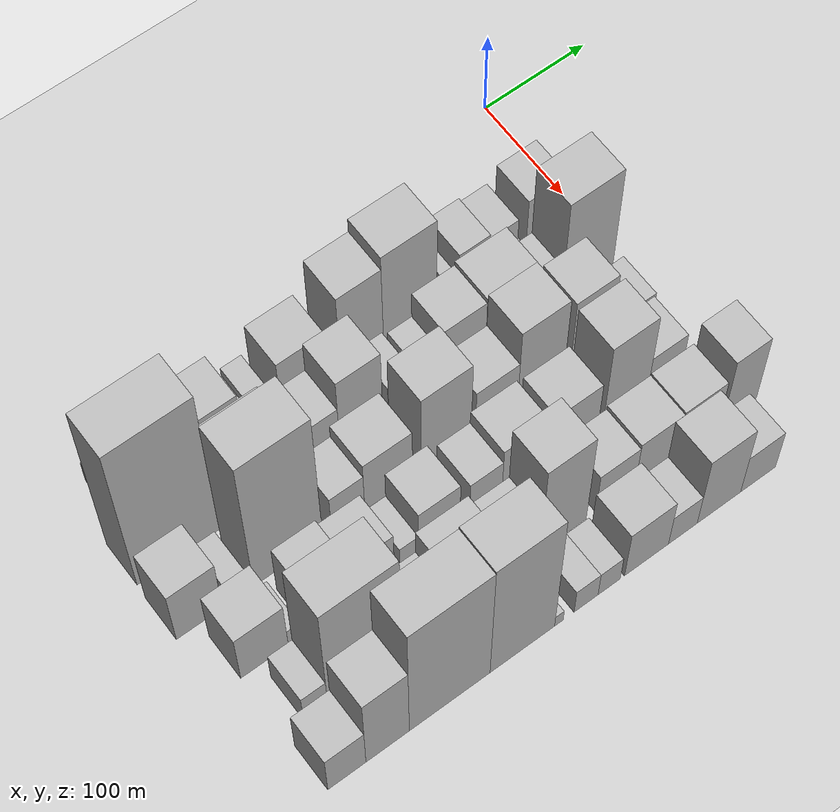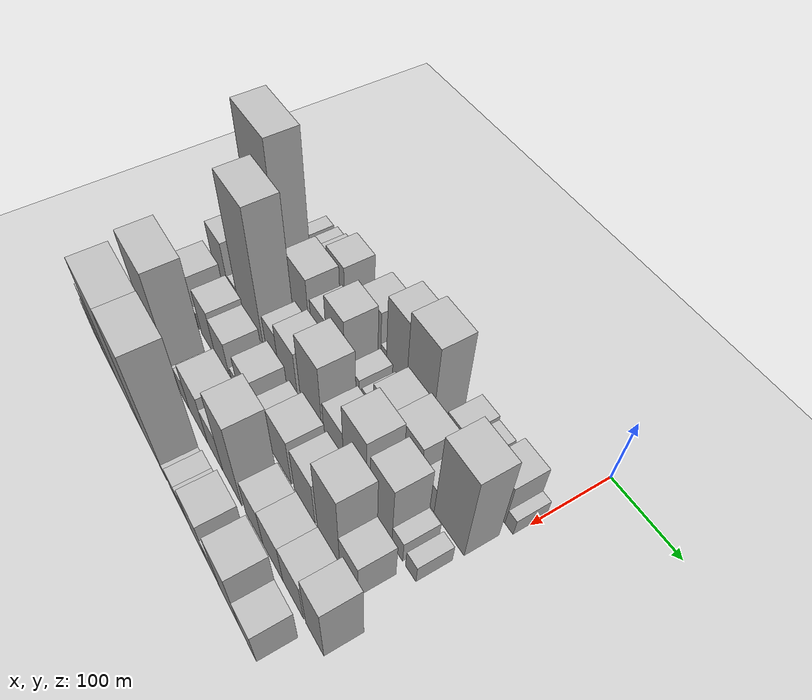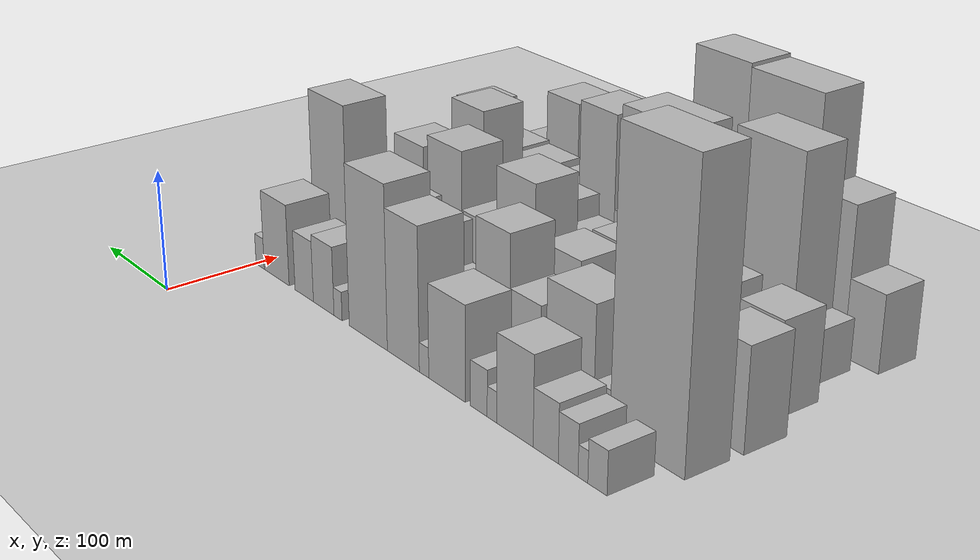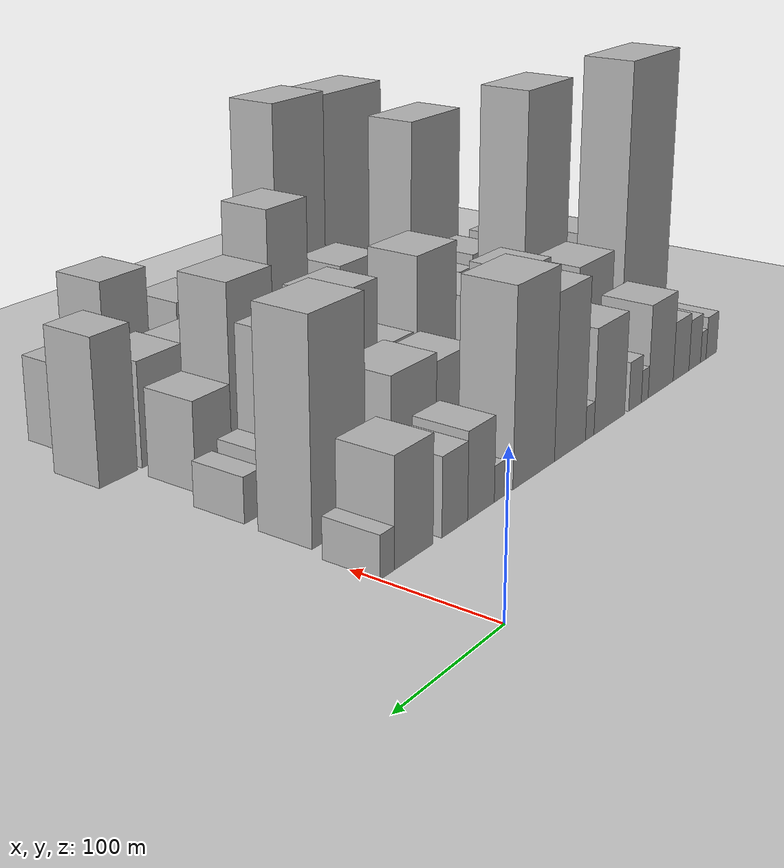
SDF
<sdf version="1.6">
 <world name="default">
  <include><name>ground_plane_1</name><uri>model://HANNAS_ground_plane</uri></include>
  <model name="building_14">
   <static>1</static>
   <pose>100.0000 -426.7860 0 0.000000 0.000000 0.000000</pose>
   <link name="link">
    <pose>0 0 16.50 0 0 0</pose>
    <collision name="collision"><geometry><box><size>40.0000 18.7343 33.0000</size></box></geometry></collision>
    <visual name="visual">
     <cast_shadows>0</cast_shadows>
     <geometry><box><size>40.0000 18.7343 33.0000</size></box></geometry>
     <material>
      <script>
       <uri>model://HANNAS_wall/materials/scripts</uri>
       <uri>model://HANNAS_wall/materials/textures</uri>
       <name>vrc/HANNAS_wall</name>
      </script>
     </material>
    </visual>
   </link>
  </model>
  <model name="building_15">
   <static>1</static>
   <pose>100.0000 -412.5389 0 0.000000 0.000000 0.000000</pose>
   <link name="link">
    <pose>0 0 12.00 0 0 0</pose>
    <collision name="collision"><geometry><box><size>40.0000 9.7600 24.0000</size></box></geometry></collision>
    <visual name="visual">
     <cast_shadows>0</cast_shadows>
     <geometry><box><size>40.0000 9.7600 24.0000</size></box></geometry>
     <material>
      <script>
       <uri>model://HANNAS_wall/materials/scripts</uri>
       <uri>model://HANNAS_wall/materials/textures</uri>
       <name>vrc/HANNAS_wall</name>
      </script>
     </material>
    </visual>
   </link>
  </model>
  <model name="building_16">
   <static>1</static>
   <pose>100.0000 -397.6763 0 0.000000 0.000000 0.000000</pose>
   <link name="link">
    <pose>0 0 19.50 0 0 0</pose>
    <collision name="collision"><geometry><box><size>40.0000 19.9652 39.0000</size></box></geometry></collision>
    <visual name="visual">
     <cast_shadows>0</cast_shadows>
     <geometry><box><size>40.0000 19.9652 39.0000</size></box></geometry>
     <material>
      <script>
       <uri>model://HANNAS_wall/materials/scripts</uri>
       <uri>model://HANNAS_wall/materials/textures</uri>
       <name>vrc/HANNAS_wall</name>
      </script>
     </material>
    </visual>
   </link>
  </model>
  <model name="building_17">
   <static>1</static>
   <pose>100.0000 -374.5633 0 0.000000 0.000000 0.000000</pose>
   <link name="link">
    <pose>0 0 22.50 0 0 0</pose>
    <collision name="collision"><geometry><box><size>40.0000 26.2607 45.0000</size></box></geometry></collision>
    <visual name="visual">
     <cast_shadows>0</cast_shadows>
     <geometry><box><size>40.0000 26.2607 45.0000</size></box></geometry>
     <material>
      <script>
       <uri>model://HANNAS_wall/materials/scripts</uri>
       <uri>model://HANNAS_wall/materials/textures</uri>
       <name>vrc/HANNAS_wall</name>
      </script>
     </material>
    </visual>
   </link>
  </model>
  <model name="building_18">
   <static>1</static>
   <pose>100.0000 -341.5382 0 0.000000 0.000000 0.000000</pose>
   <link name="link">
    <pose>0 0 34.50 0 0 0</pose>
    <collision name="collision"><geometry><box><size>40.0000 39.7896 69.0000</size></box></geometry></collision>
    <visual name="visual">
     <cast_shadows>0</cast_shadows>
     <geometry><box><size>40.0000 39.7896 69.0000</size></box></geometry>
     <material>
      <script>
       <uri>model://HANNAS_wall/materials/scripts</uri>
       <uri>model://HANNAS_wall/materials/textures</uri>
       <name>vrc/HANNAS_wall</name>
      </script>
     </material>
    </visual>
   </link>
  </model>
  <model name="building_19">
   <static>1</static>
   <pose>100.0000 -316.3711 0 0.000000 0.000000 0.000000</pose>
   <link name="link">
    <pose>0 0 12.00 0 0 0</pose>
    <collision name="collision"><geometry><box><size>40.0000 10.5445 24.0000</size></box></geometry></collision>
    <visual name="visual">
     <cast_shadows>0</cast_shadows>
     <geometry><box><size>40.0000 10.5445 24.0000</size></box></geometry>
     <material>
      <script>
       <uri>model://HANNAS_wall/materials/scripts</uri>
       <uri>model://HANNAS_wall/materials/textures</uri>
       <name>vrc/HANNAS_wall</name>
      </script>
     </material>
    </visual>
   </link>
  </model>
  <model name="building_20">
   <static>1</static>
   <pose>100.0000 -301.5799 0 0.000000 0.000000 0.000000</pose>
   <link name="link">
    <pose>0 0 18.00 0 0 0</pose>
    <collision name="collision"><geometry><box><size>40.0000 19.0379 36.0000</size></box></geometry></collision>
    <visual name="visual">
     <cast_shadows>0</cast_shadows>
     <geometry><box><size>40.0000 19.0379 36.0000</size></box></geometry>
     <material>
      <script>
       <uri>model://HANNAS_wall/materials/scripts</uri>
       <uri>model://HANNAS_wall/materials/textures</uri>
       <name>vrc/HANNAS_wall</name>
      </script>
     </material>
    </visual>
   </link>
  </model>
  <model name="building_21">
   <static>1</static>
   <pose>100.0000 -264.2307 0 0.000000 0.000000 0.000000</pose>
   <link name="link">
    <pose>0 0 37.50 0 0 0</pose>
    <collision name="collision"><geometry><box><size>40.0000 43.6604 75.0000</size></box></geometry></collision>
    <visual name="visual">
     <cast_shadows>0</cast_shadows>
     <geometry><box><size>40.0000 43.6604 75.0000</size></box></geometry>
     <material>
      <script>
       <uri>model://HANNAS_wall/materials/scripts</uri>
       <uri>model://HANNAS_wall/materials/textures</uri>
       <name>vrc/HANNAS_wall</name>
      </script>
     </material>
    </visual>
   </link>
  </model>
  <model name="building_22">
   <static>1</static>
   <pose>100.0000 -236.5684 0 0.000000 0.000000 0.000000</pose>
   <link name="link">
    <pose>0 0 12.00 0 0 0</pose>
    <collision name="collision"><geometry><box><size>40.0000 11.6643 24.0000</size></box></geometry></collision>
    <visual name="visual">
     <cast_shadows>0</cast_shadows>
     <geometry><box><size>40.0000 11.6643 24.0000</size></box></geometry>
     <material>
      <script>
       <uri>model://HANNAS_wall/materials/scripts</uri>
       <uri>model://HANNAS_wall/materials/textures</uri>
       <name>vrc/HANNAS_wall</name>
      </script>
     </material>
    </visual>
   </link>
  </model>
  <model name="building_23">
   <static>1</static>
   <pose>100.0000 -210.4001 0 0.000000 0.000000 0.000000</pose>
   <link name="link">
    <pose>0 0 57.00 0 0 0</pose>
    <collision name="collision"><geometry><box><size>40.0000 40.6722 114.0000</size></box></geometry></collision>
    <visual name="visual">
     <cast_shadows>0</cast_shadows>
     <geometry><box><size>40.0000 40.6722 114.0000</size></box></geometry>
     <material>
      <script>
       <uri>model://HANNAS_wall/materials/scripts</uri>
       <uri>model://HANNAS_wall/materials/textures</uri>
       <name>vrc/HANNAS_wall</name>
      </script>
     </material>
    </visual>
   </link>
  </model>
  <model name="building_24">
   <static>1</static>
   <pose>100.0000 -164.5461 0 0.000000 0.000000 0.000000</pose>
   <link name="link">
    <pose>0 0 66.00 0 0 0</pose>
    <collision name="collision"><geometry><box><size>40.0000 51.0359 132.0000</size></box></geometry></collision>
    <visual name="visual">
     <cast_shadows>0</cast_shadows>
     <geometry><box><size>40.0000 51.0359 132.0000</size></box></geometry>
     <material>
      <script>
       <uri>model://HANNAS_wall/materials/scripts</uri>
       <uri>model://HANNAS_wall/materials/textures</uri>
       <name>vrc/HANNAS_wall</name>
      </script>
     </material>
    </visual>
   </link>
  </model>
  <model name="building_25">
   <static>1</static>
   <pose>100.0000 -123.3570 0 0.000000 0.000000 0.000000</pose>
   <link name="link">
    <pose>0 0 12.00 0 0 0</pose>
    <collision name="collision"><geometry><box><size>40.0000 11.3422 24.0000</size></box></geometry></collision>
    <visual name="visual">
     <cast_shadows>0</cast_shadows>
     <geometry><box><size>40.0000 11.3422 24.0000</size></box></geometry>
     <material>
      <script>
       <uri>model://HANNAS_wall/materials/scripts</uri>
       <uri>model://HANNAS_wall/materials/textures</uri>
       <name>vrc/HANNAS_wall</name>
      </script>
     </material>
    </visual>
   </link>
  </model>
  <model name="building_26">
   <static>1</static>
   <pose>100.0000 -102.9204 0 0.000000 0.000000 0.000000</pose>
   <link name="link">
    <pose>0 0 28.50 0 0 0</pose>
    <collision name="collision"><geometry><box><size>40.0000 29.5310 57.0000</size></box></geometry></collision>
    <visual name="visual">
     <cast_shadows>0</cast_shadows>
     <geometry><box><size>40.0000 29.5310 57.0000</size></box></geometry>
     <material>
      <script>
       <uri>model://HANNAS_wall/materials/scripts</uri>
       <uri>model://HANNAS_wall/materials/textures</uri>
       <name>vrc/HANNAS_wall</name>
      </script>
     </material>
    </visual>
   </link>
  </model>
  <model name="building_27">
   <static>1</static>
   <pose>100.0000 -74.5961 0 0.000000 0.000000 0.000000</pose>
   <link name="link">
    <pose>0 0 25.50 0 0 0</pose>
    <collision name="collision"><geometry><box><size>40.0000 27.1176 51.0000</size></box></geometry></collision>
    <visual name="visual">
     <cast_shadows>0</cast_shadows>
     <geometry><box><size>40.0000 27.1176 51.0000</size></box></geometry>
     <material>
      <script>
       <uri>model://HANNAS_wall/materials/scripts</uri>
       <uri>model://HANNAS_wall/materials/textures</uri>
       <name>vrc/HANNAS_wall</name>
      </script>
     </material>
    </visual>
   </link>
  </model>
  <model name="building_28">
   <static>1</static>
   <pose>100.0000 -32.9300 0 0.000000 0.000000 0.000000</pose>
   <link name="link">
    <pose>0 0 34.50 0 0 0</pose>
    <collision name="collision"><geometry><box><size>40.0000 38.2145 69.0000</size></box></geometry></collision>
    <visual name="visual">
     <cast_shadows>0</cast_shadows>
     <geometry><box><size>40.0000 38.2145 69.0000</size></box></geometry>
     <material>
      <script>
       <uri>model://HANNAS_wall/materials/scripts</uri>
       <uri>model://HANNAS_wall/materials/textures</uri>
       <name>vrc/HANNAS_wall</name>
      </script>
     </material>
    </visual>
   </link>
  </model>
  <model name="building_29">
   <static>1</static>
   <pose>100.0000 -7.2792 0 0.000000 0.000000 0.000000</pose>
   <link name="link">
    <pose>0 0 13.50 0 0 0</pose>
    <collision name="collision"><geometry><box><size>40.0000 13.0871 27.0000</size></box></geometry></collision>
    <visual name="visual">
     <cast_shadows>0</cast_shadows>
     <geometry><box><size>40.0000 13.0871 27.0000</size></box></geometry>
     <material>
      <script>
       <uri>model://HANNAS_wall/materials/scripts</uri>
       <uri>model://HANNAS_wall/materials/textures</uri>
       <name>vrc/HANNAS_wall</name>
      </script>
     </material>
    </visual>
   </link>
  </model>
  <model name="building_66">
   <static>1</static>
   <pose>152.0000 -415.1909 0 0.000000 0.000000 0.000000</pose>
   <link name="link">
    <pose>0 0 112.50 0 0 0</pose>
    <collision name="collision"><geometry><box><size>40.0000 73.3578 225.0000</size></box></geometry></collision>
    <visual name="visual">
     <cast_shadows>0</cast_shadows>
     <geometry><box><size>40.0000 73.3578 225.0000</size></box></geometry>
     <material>
      <script>
       <uri>model://HANNAS_wall/materials/scripts</uri>
       <uri>model://HANNAS_wall/materials/textures</uri>
       <name>vrc/HANNAS_wall</name>
      </script>
     </material>
    </visual>
   </link>
  </model>
  <model name="building_67">
   <static>1</static>
   <pose>152.0000 -370.0278 0 0.000000 0.000000 0.000000</pose>
   <link name="link">
    <pose>0 0 16.50 0 0 0</pose>
    <collision name="collision"><geometry><box><size>40.0000 16.9684 33.0000</size></box></geometry></collision>
    <visual name="visual">
     <cast_shadows>0</cast_shadows>
     <geometry><box><size>40.0000 16.9684 33.0000</size></box></geometry>
     <material>
      <script>
       <uri>model://HANNAS_wall/materials/scripts</uri>
       <uri>model://HANNAS_wall/materials/textures</uri>
       <name>vrc/HANNAS_wall</name>
      </script>
     </material>
    </visual>
   </link>
  </model>
  <model name="building_68">
   <static>1</static>
   <pose>152.0000 -335.8367 0 0.000000 0.000000 0.000000</pose>
   <link name="link">
    <pose>0 0 45.00 0 0 0</pose>
    <collision name="collision"><geometry><box><size>40.0000 51.4138 90.0000</size></box></geometry></collision>
    <visual name="visual">
     <cast_shadows>0</cast_shadows>
     <geometry><box><size>40.0000 51.4138 90.0000</size></box></geometry>
     <material>
      <script>
       <uri>model://HANNAS_wall/materials/scripts</uri>
       <uri>model://HANNAS_wall/materials/textures</uri>
       <name>vrc/HANNAS_wall</name>
      </script>
     </material>
    </visual>
   </link>
  </model>
  <model name="building_69">
   <static>1</static>
   <pose>152.0000 -286.5372 0 0.000000 0.000000 0.000000</pose>
   <link name="link">
    <pose>0 0 33.00 0 0 0</pose>
    <collision name="collision"><geometry><box><size>40.0000 35.1853 66.0000</size></box></geometry></collision>
    <visual name="visual">
     <cast_shadows>0</cast_shadows>
     <geometry><box><size>40.0000 35.1853 66.0000</size></box></geometry>
     <material>
      <script>
       <uri>model://HANNAS_wall/materials/scripts</uri>
       <uri>model://HANNAS_wall/materials/textures</uri>
       <name>vrc/HANNAS_wall</name>
      </script>
     </material>
    </visual>
   </link>
  </model>
  <model name="building_70">
   <static>1</static>
   <pose>152.0000 -248.9999 0 0.000000 0.000000 0.000000</pose>
   <link name="link">
    <pose>0 0 54.00 0 0 0</pose>
    <collision name="collision"><geometry><box><size>40.0000 39.8893 108.0000</size></box></geometry></collision>
    <visual name="visual">
     <cast_shadows>0</cast_shadows>
     <geometry><box><size>40.0000 39.8893 108.0000</size></box></geometry>
     <material>
      <script>
       <uri>model://HANNAS_wall/materials/scripts</uri>
       <uri>model://HANNAS_wall/materials/textures</uri>
       <name>vrc/HANNAS_wall</name>
      </script>
     </material>
    </visual>
   </link>
  </model>
  <model name="building_71">
   <static>1</static>
   <pose>152.0000 -211.8616 0 0.000000 0.000000 0.000000</pose>
   <link name="link">
    <pose>0 0 22.50 0 0 0</pose>
    <collision name="collision"><geometry><box><size>40.0000 24.3873 45.0000</size></box></geometry></collision>
    <visual name="visual">
     <cast_shadows>0</cast_shadows>
     <geometry><box><size>40.0000 24.3873 45.0000</size></box></geometry>
     <material>
      <script>
       <uri>model://HANNAS_wall/materials/scripts</uri>
       <uri>model://HANNAS_wall/materials/textures</uri>
       <name>vrc/HANNAS_wall</name>
      </script>
     </material>
    </visual>
   </link>
  </model>
  <model name="building_72">
   <static>1</static>
   <pose>152.0000 -183.2617 0 0.000000 0.000000 0.000000</pose>
   <link name="link">
    <pose>0 0 19.50 0 0 0</pose>
    <collision name="collision"><geometry><box><size>40.0000 22.8126 39.0000</size></box></geometry></collision>
    <visual name="visual">
     <cast_shadows>0</cast_shadows>
     <geometry><box><size>40.0000 22.8126 39.0000</size></box></geometry>
     <material>
      <script>
       <uri>model://HANNAS_wall/materials/scripts</uri>
       <uri>model://HANNAS_wall/materials/textures</uri>
       <name>vrc/HANNAS_wall</name>
      </script>
     </material>
    </visual>
   </link>
  </model>
  <model name="building_73">
   <static>1</static>
   <pose>152.0000 -151.7934 0 0.000000 0.000000 0.000000</pose>
   <link name="link">
    <pose>0 0 37.50 0 0 0</pose>
    <collision name="collision"><geometry><box><size>40.0000 40.1239 75.0000</size></box></geometry></collision>
    <visual name="visual">
     <cast_shadows>0</cast_shadows>
     <geometry><box><size>40.0000 40.1239 75.0000</size></box></geometry>
     <material>
      <script>
       <uri>model://HANNAS_wall/materials/scripts</uri>
       <uri>model://HANNAS_wall/materials/textures</uri>
       <name>vrc/HANNAS_wall</name>
      </script>
     </material>
    </visual>
   </link>
  </model>
  <model name="building_74">
   <static>1</static>
   <pose>152.0000 -107.4669 0 0.000000 0.000000 0.000000</pose>
   <link name="link">
    <pose>0 0 40.50 0 0 0</pose>
    <collision name="collision"><geometry><box><size>40.0000 48.5291 81.0000</size></box></geometry></collision>
    <visual name="visual">
     <cast_shadows>0</cast_shadows>
     <geometry><box><size>40.0000 48.5291 81.0000</size></box></geometry>
     <material>
      <script>
       <uri>model://HANNAS_wall/materials/scripts</uri>
       <uri>model://HANNAS_wall/materials/textures</uri>
       <name>vrc/HANNAS_wall</name>
      </script>
     </material>
    </visual>
   </link>
  </model>
  <model name="building_75">
   <static>1</static>
   <pose>152.0000 -70.3819 0 0.000000 0.000000 0.000000</pose>
   <link name="link">
    <pose>0 0 22.50 0 0 0</pose>
    <collision name="collision"><geometry><box><size>40.0000 25.6409 45.0000</size></box></geometry></collision>
    <visual name="visual">
     <cast_shadows>0</cast_shadows>
     <geometry><box><size>40.0000 25.6409 45.0000</size></box></geometry>
     <material>
      <script>
       <uri>model://HANNAS_wall/materials/scripts</uri>
       <uri>model://HANNAS_wall/materials/textures</uri>
       <name>vrc/HANNAS_wall</name>
      </script>
     </material>
    </visual>
   </link>
  </model>
  <model name="building_76">
   <static>1</static>
   <pose>152.0000 -32.1716 0 0.000000 0.000000 0.000000</pose>
   <link name="link">
    <pose>0 0 70.50 0 0 0</pose>
    <collision name="collision"><geometry><box><size>40.0000 50.7798 141.0000</size></box></geometry></collision>
    <visual name="visual">
     <cast_shadows>0</cast_shadows>
     <geometry><box><size>40.0000 50.7798 141.0000</size></box></geometry>
     <material>
      <script>
       <uri>model://HANNAS_wall/materials/scripts</uri>
       <uri>model://HANNAS_wall/materials/textures</uri>
       <name>vrc/HANNAS_wall</name>
      </script>
     </material>
    </visual>
   </link>
  </model>
  <model name="building_114">
   <static>1</static>
   <pose>204.0000 -432.3704 0 0.000000 0.000000 0.000000</pose>
   <link name="link">
    <pose>0 0 40.50 0 0 0</pose>
    <collision name="collision"><geometry><box><size>40.0000 40.7654 81.0000</size></box></geometry></collision>
    <visual name="visual">
     <cast_shadows>0</cast_shadows>
     <geometry><box><size>40.0000 40.7654 81.0000</size></box></geometry>
     <material>
      <script>
       <uri>model://HANNAS_wall/materials/scripts</uri>
       <uri>model://HANNAS_wall/materials/textures</uri>
       <name>vrc/HANNAS_wall</name>
      </script>
     </material>
    </visual>
   </link>
  </model>
  <model name="building_115">
   <static>1</static>
   <pose>204.0000 -398.2589 0 0.000000 0.000000 0.000000</pose>
   <link name="link">
    <pose>0 0 16.50 0 0 0</pose>
    <collision name="collision"><geometry><box><size>40.0000 19.4574 33.0000</size></box></geometry></collision>
    <visual name="visual">
     <cast_shadows>0</cast_shadows>
     <geometry><box><size>40.0000 19.4574 33.0000</size></box></geometry>
     <material>
      <script>
       <uri>model://HANNAS_wall/materials/scripts</uri>
       <uri>model://HANNAS_wall/materials/textures</uri>
       <name>vrc/HANNAS_wall</name>
      </script>
     </material>
    </visual>
   </link>
  </model>
  <model name="building_116">
   <static>1</static>
   <pose>204.0000 -353.4340 0 0.000000 0.000000 0.000000</pose>
   <link name="link">
    <pose>0 0 103.50 0 0 0</pose>
    <collision name="collision"><geometry><box><size>40.0000 62.1924 207.0000</size></box></geometry></collision>
    <visual name="visual">
     <cast_shadows>0</cast_shadows>
     <geometry><box><size>40.0000 62.1924 207.0000</size></box></geometry>
     <material>
      <script>
       <uri>model://HANNAS_wall/materials/scripts</uri>
       <uri>model://HANNAS_wall/materials/textures</uri>
       <name>vrc/HANNAS_wall</name>
      </script>
     </material>
    </visual>
   </link>
  </model>
  <model name="building_117">
   <static>1</static>
   <pose>204.0000 -299.2143 0 0.000000 0.000000 0.000000</pose>
   <link name="link">
    <pose>0 0 30.00 0 0 0</pose>
    <collision name="collision"><geometry><box><size>40.0000 30.2470 60.0000</size></box></geometry></collision>
    <visual name="visual">
     <cast_shadows>0</cast_shadows>
     <geometry><box><size>40.0000 30.2470 60.0000</size></box></geometry>
     <material>
      <script>
       <uri>model://HANNAS_wall/materials/scripts</uri>
       <uri>model://HANNAS_wall/materials/textures</uri>
       <name>vrc/HANNAS_wall</name>
      </script>
     </material>
    </visual>
   </link>
  </model>
  <model name="building_118">
   <static>1</static>
   <pose>204.0000 -261.9814 0 0.000000 0.000000 0.000000</pose>
   <link name="link">
    <pose>0 0 39.00 0 0 0</pose>
    <collision name="collision"><geometry><box><size>40.0000 44.2189 78.0000</size></box></geometry></collision>
    <visual name="visual">
     <cast_shadows>0</cast_shadows>
     <geometry><box><size>40.0000 44.2189 78.0000</size></box></geometry>
     <material>
      <script>
       <uri>model://HANNAS_wall/materials/scripts</uri>
       <uri>model://HANNAS_wall/materials/textures</uri>
       <name>vrc/HANNAS_wall</name>
      </script>
     </material>
    </visual>
   </link>
  </model>
  <model name="building_119">
   <static>1</static>
   <pose>204.0000 -208.6191 0 0.000000 0.000000 0.000000</pose>
   <link name="link">
    <pose>0 0 60.00 0 0 0</pose>
    <collision name="collision"><geometry><box><size>40.0000 46.5056 120.0000</size></box></geometry></collision>
    <visual name="visual">
     <cast_shadows>0</cast_shadows>
     <geometry><box><size>40.0000 46.5056 120.0000</size></box></geometry>
     <material>
      <script>
       <uri>model://HANNAS_wall/materials/scripts</uri>
       <uri>model://HANNAS_wall/materials/textures</uri>
       <name>vrc/HANNAS_wall</name>
      </script>
     </material>
    </visual>
   </link>
  </model>
  <model name="building_120">
   <static>1</static>
   <pose>204.0000 -161.3106 0 0.000000 0.000000 0.000000</pose>
   <link name="link">
    <pose>0 0 34.50 0 0 0</pose>
    <collision name="collision"><geometry><box><size>40.0000 40.1116 69.0000</size></box></geometry></collision>
    <visual name="visual">
     <cast_shadows>0</cast_shadows>
     <geometry><box><size>40.0000 40.1116 69.0000</size></box></geometry>
     <material>
      <script>
       <uri>model://HANNAS_wall/materials/scripts</uri>
       <uri>model://HANNAS_wall/materials/textures</uri>
       <name>vrc/HANNAS_wall</name>
      </script>
     </material>
    </visual>
   </link>
  </model>
  <model name="building_121">
   <static>1</static>
   <pose>204.0000 -118.8850 0 0.000000 0.000000 0.000000</pose>
   <link name="link">
    <pose>0 0 58.50 0 0 0</pose>
    <collision name="collision"><geometry><box><size>40.0000 44.7396 117.0000</size></box></geometry></collision>
    <visual name="visual">
     <cast_shadows>0</cast_shadows>
     <geometry><box><size>40.0000 44.7396 117.0000</size></box></geometry>
     <material>
      <script>
       <uri>model://HANNAS_wall/materials/scripts</uri>
       <uri>model://HANNAS_wall/materials/textures</uri>
       <name>vrc/HANNAS_wall</name>
      </script>
     </material>
    </visual>
   </link>
  </model>
  <model name="building_122">
   <static>1</static>
   <pose>204.0000 -70.5329 0 0.000000 0.000000 0.000000</pose>
   <link name="link">
    <pose>0 0 52.50 0 0 0</pose>
    <collision name="collision"><geometry><box><size>40.0000 39.9645 105.0000</size></box></geometry></collision>
    <visual name="visual">
     <cast_shadows>0</cast_shadows>
     <geometry><box><size>40.0000 39.9645 105.0000</size></box></geometry>
     <material>
      <script>
       <uri>model://HANNAS_wall/materials/scripts</uri>
       <uri>model://HANNAS_wall/materials/textures</uri>
       <name>vrc/HANNAS_wall</name>
      </script>
     </material>
    </visual>
   </link>
  </model>
  <model name="building_123">
   <static>1</static>
   <pose>204.0000 -40.9830 0 0.000000 0.000000 0.000000</pose>
   <link name="link">
    <pose>0 0 18.00 0 0 0</pose>
    <collision name="collision"><geometry><box><size>40.0000 19.1354 36.0000</size></box></geometry></collision>
    <visual name="visual">
     <cast_shadows>0</cast_shadows>
     <geometry><box><size>40.0000 19.1354 36.0000</size></box></geometry>
     <material>
      <script>
       <uri>model://HANNAS_wall/materials/scripts</uri>
       <uri>model://HANNAS_wall/materials/textures</uri>
       <name>vrc/HANNAS_wall</name>
      </script>
     </material>
    </visual>
   </link>
  </model>
  <model name="building_124">
   <static>1</static>
   <pose>204.0000 -17.5441 0 0.000000 0.000000 0.000000</pose>
   <link name="link">
    <pose>0 0 15.00 0 0 0</pose>
    <collision name="collision"><geometry><box><size>40.0000 17.7423 30.0000</size></box></geometry></collision>
    <visual name="visual">
     <cast_shadows>0</cast_shadows>
     <geometry><box><size>40.0000 17.7423 30.0000</size></box></geometry>
     <material>
      <script>
       <uri>model://HANNAS_wall/materials/scripts</uri>
       <uri>model://HANNAS_wall/materials/textures</uri>
       <name>vrc/HANNAS_wall</name>
      </script>
     </material>
    </visual>
   </link>
  </model>
  <model name="building_160">
   <static>1</static>
   <pose>256.0000 -411.5734 0 0.000000 0.000000 0.000000</pose>
   <link name="link">
    <pose>0 0 37.50 0 0 0</pose>
    <collision name="collision"><geometry><box><size>40.0000 41.8106 75.0000</size></box></geometry></collision>
    <visual name="visual">
     <cast_shadows>0</cast_shadows>
     <geometry><box><size>40.0000 41.8106 75.0000</size></box></geometry>
     <material>
      <script>
       <uri>model://HANNAS_wall/materials/scripts</uri>
       <uri>model://HANNAS_wall/materials/textures</uri>
       <name>vrc/HANNAS_wall</name>
      </script>
     </material>
    </visual>
   </link>
  </model>
  <model name="building_161">
   <static>1</static>
   <pose>256.0000 -385.0964 0 0.000000 0.000000 0.000000</pose>
   <link name="link">
    <pose>0 0 13.50 0 0 0</pose>
    <collision name="collision"><geometry><box><size>40.0000 11.1434 27.0000</size></box></geometry></collision>
    <visual name="visual">
     <cast_shadows>0</cast_shadows>
     <geometry><box><size>40.0000 11.1434 27.0000</size></box></geometry>
     <material>
      <script>
       <uri>model://HANNAS_wall/materials/scripts</uri>
       <uri>model://HANNAS_wall/materials/textures</uri>
       <name>vrc/HANNAS_wall</name>
      </script>
     </material>
    </visual>
   </link>
  </model>
  <model name="building_162">
   <static>1</static>
   <pose>256.0000 -353.3601 0 0.000000 0.000000 0.000000</pose>
   <link name="link">
    <pose>0 0 37.50 0 0 0</pose>
    <collision name="collision"><geometry><box><size>40.0000 38.3291 75.0000</size></box></geometry></collision>
    <visual name="visual">
     <cast_shadows>0</cast_shadows>
     <geometry><box><size>40.0000 38.3291 75.0000</size></box></geometry>
     <material>
      <script>
       <uri>model://HANNAS_wall/materials/scripts</uri>
       <uri>model://HANNAS_wall/materials/textures</uri>
       <name>vrc/HANNAS_wall</name>
      </script>
     </material>
    </visual>
   </link>
  </model>
  <model name="building_163">
   <static>1</static>
   <pose>256.0000 -314.8310 0 0.000000 0.000000 0.000000</pose>
   <link name="link">
    <pose>0 0 33.00 0 0 0</pose>
    <collision name="collision"><geometry><box><size>40.0000 38.7291 66.0000</size></box></geometry></collision>
    <visual name="visual">
     <cast_shadows>0</cast_shadows>
     <geometry><box><size>40.0000 38.7291 66.0000</size></box></geometry>
     <material>
      <script>
       <uri>model://HANNAS_wall/materials/scripts</uri>
       <uri>model://HANNAS_wall/materials/textures</uri>
       <name>vrc/HANNAS_wall</name>
      </script>
     </material>
    </visual>
   </link>
  </model>
  <model name="building_164">
   <static>1</static>
   <pose>256.0000 -281.8417 0 0.000000 0.000000 0.000000</pose>
   <link name="link">
    <pose>0 0 16.50 0 0 0</pose>
    <collision name="collision"><geometry><box><size>40.0000 17.2495 33.0000</size></box></geometry></collision>
    <visual name="visual">
     <cast_shadows>0</cast_shadows>
     <geometry><box><size>40.0000 17.2495 33.0000</size></box></geometry>
     <material>
      <script>
       <uri>model://HANNAS_wall/materials/scripts</uri>
       <uri>model://HANNAS_wall/materials/textures</uri>
       <name>vrc/HANNAS_wall</name>
      </script>
     </material>
    </visual>
   </link>
  </model>
  <model name="building_165">
   <static>1</static>
   <pose>256.0000 -254.3484 0 0.000000 0.000000 0.000000</pose>
   <link name="link">
    <pose>0 0 36.00 0 0 0</pose>
    <collision name="collision"><geometry><box><size>40.0000 37.7371 72.0000</size></box></geometry></collision>
    <visual name="visual">
     <cast_shadows>0</cast_shadows>
     <geometry><box><size>40.0000 37.7371 72.0000</size></box></geometry>
     <material>
      <script>
       <uri>model://HANNAS_wall/materials/scripts</uri>
       <uri>model://HANNAS_wall/materials/textures</uri>
       <name>vrc/HANNAS_wall</name>
      </script>
     </material>
    </visual>
   </link>
  </model>
  <model name="building_166">
   <static>1</static>
   <pose>256.0000 -211.4674 0 0.000000 0.000000 0.000000</pose>
   <link name="link">
    <pose>0 0 30.00 0 0 0</pose>
    <collision name="collision"><geometry><box><size>40.0000 30.0251 60.0000</size></box></geometry></collision>
    <visual name="visual">
     <cast_shadows>0</cast_shadows>
     <geometry><box><size>40.0000 30.0251 60.0000</size></box></geometry>
     <material>
      <script>
       <uri>model://HANNAS_wall/materials/scripts</uri>
       <uri>model://HANNAS_wall/materials/textures</uri>
       <name>vrc/HANNAS_wall</name>
      </script>
     </material>
    </visual>
   </link>
  </model>
  <model name="building_167">
   <static>1</static>
   <pose>256.0000 -175.3302 0 0.000000 0.000000 0.000000</pose>
   <link name="link">
    <pose>0 0 39.00 0 0 0</pose>
    <collision name="collision"><geometry><box><size>40.0000 42.2492 78.0000</size></box></geometry></collision>
    <visual name="visual">
     <cast_shadows>0</cast_shadows>
     <geometry><box><size>40.0000 42.2492 78.0000</size></box></geometry>
     <material>
      <script>
       <uri>model://HANNAS_wall/materials/scripts</uri>
       <uri>model://HANNAS_wall/materials/textures</uri>
       <name>vrc/HANNAS_wall</name>
      </script>
     </material>
    </visual>
   </link>
  </model>
  <model name="building_168">
   <static>1</static>
   <pose>256.0000 -126.8129 0 0.000000 0.000000 0.000000</pose>
   <link name="link">
    <pose>0 0 37.50 0 0 0</pose>
    <collision name="collision"><geometry><box><size>40.0000 42.7853 75.0000</size></box></geometry></collision>
    <visual name="visual">
     <cast_shadows>0</cast_shadows>
     <geometry><box><size>40.0000 42.7853 75.0000</size></box></geometry>
     <material>
      <script>
       <uri>model://HANNAS_wall/materials/scripts</uri>
       <uri>model://HANNAS_wall/materials/textures</uri>
       <name>vrc/HANNAS_wall</name>
      </script>
     </material>
    </visual>
   </link>
  </model>
  <model name="building_169">
   <static>1</static>
   <pose>256.0000 -79.0604 0 0.000000 0.000000 0.000000</pose>
   <link name="link">
    <pose>0 0 63.00 0 0 0</pose>
    <collision name="collision"><geometry><box><size>40.0000 42.7198 126.0000</size></box></geometry></collision>
    <visual name="visual">
     <cast_shadows>0</cast_shadows>
     <geometry><box><size>40.0000 42.7198 126.0000</size></box></geometry>
     <material>
      <script>
       <uri>model://HANNAS_wall/materials/scripts</uri>
       <uri>model://HANNAS_wall/materials/textures</uri>
       <name>vrc/HANNAS_wall</name>
      </script>
     </material>
    </visual>
   </link>
  </model>
  <model name="building_170">
   <static>1</static>
   <pose>256.0000 -40.7276 0 0.000000 0.000000 0.000000</pose>
   <link name="link">
    <pose>0 0 30.00 0 0 0</pose>
    <collision name="collision"><geometry><box><size>40.0000 33.9458 60.0000</size></box></geometry></collision>
    <visual name="visual">
     <cast_shadows>0</cast_shadows>
     <geometry><box><size>40.0000 33.9458 60.0000</size></box></geometry>
     <material>
      <script>
       <uri>model://HANNAS_wall/materials/scripts</uri>
       <uri>model://HANNAS_wall/materials/textures</uri>
       <name>vrc/HANNAS_wall</name>
      </script>
     </material>
    </visual>
   </link>
  </model>
  <model name="building_209">
   <static>1</static>
   <pose>308.0000 -403.9989 0 0.000000 0.000000 0.000000</pose>
   <link name="link">
    <pose>0 0 21.00 0 0 0</pose>
    <collision name="collision"><geometry><box><size>40.0000 21.2848 42.0000</size></box></geometry></collision>
    <visual name="visual">
     <cast_shadows>0</cast_shadows>
     <geometry><box><size>40.0000 21.2848 42.0000</size></box></geometry>
     <material>
      <script>
       <uri>model://HANNAS_wall/materials/scripts</uri>
       <uri>model://HANNAS_wall/materials/textures</uri>
       <name>vrc/HANNAS_wall</name>
      </script>
     </material>
    </visual>
   </link>
  </model>
  <model name="building_210">
   <static>1</static>
   <pose>308.0000 -360.3417 0 0.000000 0.000000 0.000000</pose>
   <link name="link">
    <pose>0 0 85.50 0 0 0</pose>
    <collision name="collision"><geometry><box><size>40.0000 66.0297 171.0000</size></box></geometry></collision>
    <visual name="visual">
     <cast_shadows>0</cast_shadows>
     <geometry><box><size>40.0000 66.0297 171.0000</size></box></geometry>
     <material>
      <script>
       <uri>model://HANNAS_wall/materials/scripts</uri>
       <uri>model://HANNAS_wall/materials/textures</uri>
       <name>vrc/HANNAS_wall</name>
      </script>
     </material>
    </visual>
   </link>
  </model>
  <model name="building_211">
   <static>1</static>
   <pose>308.0000 -321.0170 0 0.000000 0.000000 0.000000</pose>
   <link name="link">
    <pose>0 0 13.50 0 0 0</pose>
    <collision name="collision"><geometry><box><size>40.0000 12.6197 27.0000</size></box></geometry></collision>
    <visual name="visual">
     <cast_shadows>0</cast_shadows>
     <geometry><box><size>40.0000 12.6197 27.0000</size></box></geometry>
     <material>
      <script>
       <uri>model://HANNAS_wall/materials/scripts</uri>
       <uri>model://HANNAS_wall/materials/textures</uri>
       <name>vrc/HANNAS_wall</name>
      </script>
     </material>
    </visual>
   </link>
  </model>
  <model name="building_212">
   <static>1</static>
   <pose>308.0000 -297.3179 0 0.000000 0.000000 0.000000</pose>
   <link name="link">
    <pose>0 0 22.50 0 0 0</pose>
    <collision name="collision"><geometry><box><size>40.0000 24.7787 45.0000</size></box></geometry></collision>
    <visual name="visual">
     <cast_shadows>0</cast_shadows>
     <geometry><box><size>40.0000 24.7787 45.0000</size></box></geometry>
     <material>
      <script>
       <uri>model://HANNAS_wall/materials/scripts</uri>
       <uri>model://HANNAS_wall/materials/textures</uri>
       <name>vrc/HANNAS_wall</name>
      </script>
     </material>
    </visual>
   </link>
  </model>
  <model name="building_213">
   <static>1</static>
   <pose>308.0000 -261.4493 0 0.000000 0.000000 0.000000</pose>
   <link name="link">
    <pose>0 0 40.50 0 0 0</pose>
    <collision name="collision"><geometry><box><size>40.0000 46.9584 81.0000</size></box></geometry></collision>
    <visual name="visual">
     <cast_shadows>0</cast_shadows>
     <geometry><box><size>40.0000 46.9584 81.0000</size></box></geometry>
     <material>
      <script>
       <uri>model://HANNAS_wall/materials/scripts</uri>
       <uri>model://HANNAS_wall/materials/textures</uri>
       <name>vrc/HANNAS_wall</name>
      </script>
     </material>
    </visual>
   </link>
  </model>
  <model name="building_214">
   <static>1</static>
   <pose>308.0000 -219.4188 0 0.000000 0.000000 0.000000</pose>
   <link name="link">
    <pose>0 0 31.50 0 0 0</pose>
    <collision name="collision"><geometry><box><size>40.0000 37.1027 63.0000</size></box></geometry></collision>
    <visual name="visual">
     <cast_shadows>0</cast_shadows>
     <geometry><box><size>40.0000 37.1027 63.0000</size></box></geometry>
     <material>
      <script>
       <uri>model://HANNAS_wall/materials/scripts</uri>
       <uri>model://HANNAS_wall/materials/textures</uri>
       <name>vrc/HANNAS_wall</name>
      </script>
     </material>
    </visual>
   </link>
  </model>
  <model name="building_215">
   <static>1</static>
   <pose>308.0000 -179.3333 0 0.000000 0.000000 0.000000</pose>
   <link name="link">
    <pose>0 0 70.50 0 0 0</pose>
    <collision name="collision"><geometry><box><size>40.0000 43.0682 141.0000</size></box></geometry></collision>
    <visual name="visual">
     <cast_shadows>0</cast_shadows>
     <geometry><box><size>40.0000 43.0682 141.0000</size></box></geometry>
     <material>
      <script>
       <uri>model://HANNAS_wall/materials/scripts</uri>
       <uri>model://HANNAS_wall/materials/textures</uri>
       <name>vrc/HANNAS_wall</name>
      </script>
     </material>
    </visual>
   </link>
  </model>
  <model name="building_216">
   <static>1</static>
   <pose>308.0000 -130.0820 0 0.000000 0.000000 0.000000</pose>
   <link name="link">
    <pose>0 0 31.50 0 0 0</pose>
    <collision name="collision"><geometry><box><size>40.0000 37.4346 63.0000</size></box></geometry></collision>
    <visual name="visual">
     <cast_shadows>0</cast_shadows>
     <geometry><box><size>40.0000 37.4346 63.0000</size></box></geometry>
     <material>
      <script>
       <uri>model://HANNAS_wall/materials/scripts</uri>
       <uri>model://HANNAS_wall/materials/textures</uri>
       <name>vrc/HANNAS_wall</name>
      </script>
     </material>
    </visual>
   </link>
  </model>
  <model name="building_217">
   <static>1</static>
   <pose>308.0000 -91.0264 0 0.000000 0.000000 0.000000</pose>
   <link name="link">
    <pose>0 0 34.50 0 0 0</pose>
    <collision name="collision"><geometry><box><size>40.0000 40.6766 69.0000</size></box></geometry></collision>
    <visual name="visual">
     <cast_shadows>0</cast_shadows>
     <geometry><box><size>40.0000 40.6766 69.0000</size></box></geometry>
     <material>
      <script>
       <uri>model://HANNAS_wall/materials/scripts</uri>
       <uri>model://HANNAS_wall/materials/textures</uri>
       <name>vrc/HANNAS_wall</name>
      </script>
     </material>
    </visual>
   </link>
  </model>
  <model name="building_218">
   <static>1</static>
   <pose>308.0000 -50.5544 0 0.000000 0.000000 0.000000</pose>
   <link name="link">
    <pose>0 0 36.00 0 0 0</pose>
    <collision name="collision"><geometry><box><size>40.0000 40.2673 72.0000</size></box></geometry></collision>
    <visual name="visual">
     <cast_shadows>0</cast_shadows>
     <geometry><box><size>40.0000 40.2673 72.0000</size></box></geometry>
     <material>
      <script>
       <uri>model://HANNAS_wall/materials/scripts</uri>
       <uri>model://HANNAS_wall/materials/textures</uri>
       <name>vrc/HANNAS_wall</name>
      </script>
     </material>
    </visual>
   </link>
  </model>
  <model name="building_219">
   <static>1</static>
   <pose>308.0000 -9.9071 0 0.000000 0.000000 0.000000</pose>
   <link name="link">
    <pose>0 0 49.50 0 0 0</pose>
    <collision name="collision"><geometry><box><size>40.0000 33.0273 99.0000</size></box></geometry></collision>
    <visual name="visual">
     <cast_shadows>0</cast_shadows>
     <geometry><box><size>40.0000 33.0273 99.0000</size></box></geometry>
     <material>
      <script>
       <uri>model://HANNAS_wall/materials/scripts</uri>
       <uri>model://HANNAS_wall/materials/textures</uri>
       <name>vrc/HANNAS_wall</name>
      </script>
     </material>
    </visual>
   </link>
  </model>
  <model name="building_252">
   <static>1</static>
   <pose>360.0000 -414.2092 0 0.000000 0.000000 0.000000</pose>
   <link name="link">
    <pose>0 0 31.50 0 0 0</pose>
    <collision name="collision"><geometry><box><size>40.0000 33.1760 63.0000</size></box></geometry></collision>
    <visual name="visual">
     <cast_shadows>0</cast_shadows>
     <geometry><box><size>40.0000 33.1760 63.0000</size></box></geometry>
     <material>
      <script>
       <uri>model://HANNAS_wall/materials/scripts</uri>
       <uri>model://HANNAS_wall/materials/textures</uri>
       <name>vrc/HANNAS_wall</name>
      </script>
     </material>
    </visual>
   </link>
  </model>
  <model name="building_253">
   <static>1</static>
   <pose>360.0000 -378.5307 0 0.000000 0.000000 0.000000</pose>
   <link name="link">
    <pose>0 0 60.00 0 0 0</pose>
    <collision name="collision"><geometry><box><size>40.0000 38.1809 120.0000</size></box></geometry></collision>
    <visual name="visual">
     <cast_shadows>0</cast_shadows>
     <geometry><box><size>40.0000 38.1809 120.0000</size></box></geometry>
     <material>
      <script>
       <uri>model://HANNAS_wall/materials/scripts</uri>
       <uri>model://HANNAS_wall/materials/textures</uri>
       <name>vrc/HANNAS_wall</name>
      </script>
     </material>
    </visual>
   </link>
  </model>
  <model name="building_254">
   <static>1</static>
   <pose>360.0000 -323.3892 0 0.000000 0.000000 0.000000</pose>
   <link name="link">
    <pose>0 0 96.00 0 0 0</pose>
    <collision name="collision"><geometry><box><size>40.0000 72.1022 192.0000</size></box></geometry></collision>
    <visual name="visual">
     <cast_shadows>0</cast_shadows>
     <geometry><box><size>40.0000 72.1022 192.0000</size></box></geometry>
     <material>
      <script>
       <uri>model://HANNAS_wall/materials/scripts</uri>
       <uri>model://HANNAS_wall/materials/textures</uri>
       <name>vrc/HANNAS_wall</name>
      </script>
     </material>
    </visual>
   </link>
  </model>
  <model name="building_255">
   <static>1</static>
   <pose>360.0000 -257.8987 0 0.000000 0.000000 0.000000</pose>
   <link name="link">
    <pose>0 0 97.50 0 0 0</pose>
    <collision name="collision"><geometry><box><size>40.0000 58.8788 195.0000</size></box></geometry></collision>
    <visual name="visual">
     <cast_shadows>0</cast_shadows>
     <geometry><box><size>40.0000 58.8788 195.0000</size></box></geometry>
     <material>
      <script>
       <uri>model://HANNAS_wall/materials/scripts</uri>
       <uri>model://HANNAS_wall/materials/textures</uri>
       <name>vrc/HANNAS_wall</name>
      </script>
     </material>
    </visual>
   </link>
  </model>
  <model name="building_256">
   <static>1</static>
   <pose>360.0000 -224.4572 0 0.000000 0.000000 0.000000</pose>
   <link name="link">
    <pose>0 0 9.00 0 0 0</pose>
    <collision name="collision"><geometry><box><size>40.0000 8.0042 18.0000</size></box></geometry></collision>
    <visual name="visual">
     <cast_shadows>0</cast_shadows>
     <geometry><box><size>40.0000 8.0042 18.0000</size></box></geometry>
     <material>
      <script>
       <uri>model://HANNAS_wall/materials/scripts</uri>
       <uri>model://HANNAS_wall/materials/textures</uri>
       <name>vrc/HANNAS_wall</name>
      </script>
     </material>
    </visual>
   </link>
  </model>
  <model name="building_257">
   <static>1</static>
   <pose>360.0000 -199.3492 0 0.000000 0.000000 0.000000</pose>
   <link name="link">
    <pose>0 0 19.50 0 0 0</pose>
    <collision name="collision"><geometry><box><size>40.0000 22.2117 39.0000</size></box></geometry></collision>
    <visual name="visual">
     <cast_shadows>0</cast_shadows>
     <geometry><box><size>40.0000 22.2117 39.0000</size></box></geometry>
     <material>
      <script>
       <uri>model://HANNAS_wall/materials/scripts</uri>
       <uri>model://HANNAS_wall/materials/textures</uri>
       <name>vrc/HANNAS_wall</name>
      </script>
     </material>
    </visual>
   </link>
  </model>
  <model name="building_258">
   <static>1</static>
   <pose>360.0000 -177.8552 0 0.000000 0.000000 0.000000</pose>
   <link name="link">
    <pose>0 0 19.50 0 0 0</pose>
    <collision name="collision"><geometry><box><size>40.0000 20.7763 39.0000</size></box></geometry></collision>
    <visual name="visual">
     <cast_shadows>0</cast_shadows>
     <geometry><box><size>40.0000 20.7763 39.0000</size></box></geometry>
     <material>
      <script>
       <uri>model://HANNAS_wall/materials/scripts</uri>
       <uri>model://HANNAS_wall/materials/textures</uri>
       <name>vrc/HANNAS_wall</name>
      </script>
     </material>
    </visual>
   </link>
  </model>
  <model name="building_259">
   <static>1</static>
   <pose>360.0000 -142.7580 0 0.000000 0.000000 0.000000</pose>
   <link name="link">
    <pose>0 0 37.50 0 0 0</pose>
    <collision name="collision"><geometry><box><size>40.0000 41.4183 75.0000</size></box></geometry></collision>
    <visual name="visual">
     <cast_shadows>0</cast_shadows>
     <geometry><box><size>40.0000 41.4183 75.0000</size></box></geometry>
     <material>
      <script>
       <uri>model://HANNAS_wall/materials/scripts</uri>
       <uri>model://HANNAS_wall/materials/textures</uri>
       <name>vrc/HANNAS_wall</name>
      </script>
     </material>
    </visual>
   </link>
  </model>
  <model name="building_260">
   <static>1</static>
   <pose>360.0000 -108.3296 0 0.000000 0.000000 0.000000</pose>
   <link name="link">
    <pose>0 0 24.00 0 0 0</pose>
    <collision name="collision"><geometry><box><size>40.0000 27.4385 48.0000</size></box></geometry></collision>
    <visual name="visual">
     <cast_shadows>0</cast_shadows>
     <geometry><box><size>40.0000 27.4385 48.0000</size></box></geometry>
     <material>
      <script>
       <uri>model://HANNAS_wall/materials/scripts</uri>
       <uri>model://HANNAS_wall/materials/textures</uri>
       <name>vrc/HANNAS_wall</name>
      </script>
     </material>
    </visual>
   </link>
  </model>
  <model name="building_261">
   <static>1</static>
   <pose>360.0000 -73.7433 0 0.000000 0.000000 0.000000</pose>
   <link name="link">
    <pose>0 0 54.00 0 0 0</pose>
    <collision name="collision"><geometry><box><size>40.0000 41.7339 108.0000</size></box></geometry></collision>
    <visual name="visual">
     <cast_shadows>0</cast_shadows>
     <geometry><box><size>40.0000 41.7339 108.0000</size></box></geometry>
     <material>
      <script>
       <uri>model://HANNAS_wall/materials/scripts</uri>
       <uri>model://HANNAS_wall/materials/textures</uri>
       <name>vrc/HANNAS_wall</name>
      </script>
     </material>
    </visual>
   </link>
  </model>
  <model name="building_262">
   <static>1</static>
   <pose>360.0000 -35.8513 0 0.000000 0.000000 0.000000</pose>
   <link name="link">
    <pose>0 0 30.00 0 0 0</pose>
    <collision name="collision"><geometry><box><size>40.0000 34.0502 60.0000</size></box></geometry></collision>
    <visual name="visual">
     <cast_shadows>0</cast_shadows>
     <geometry><box><size>40.0000 34.0502 60.0000</size></box></geometry>
     <material>
      <script>
       <uri>model://HANNAS_wall/materials/scripts</uri>
       <uri>model://HANNAS_wall/materials/textures</uri>
       <name>vrc/HANNAS_wall</name>
      </script>
     </material>
    </visual>
   </link>
  </model>
 </world>
</sdf>
